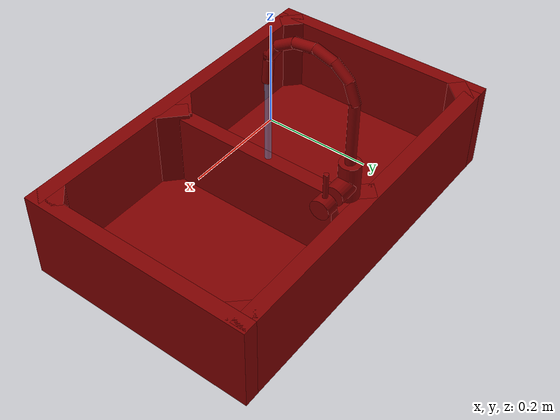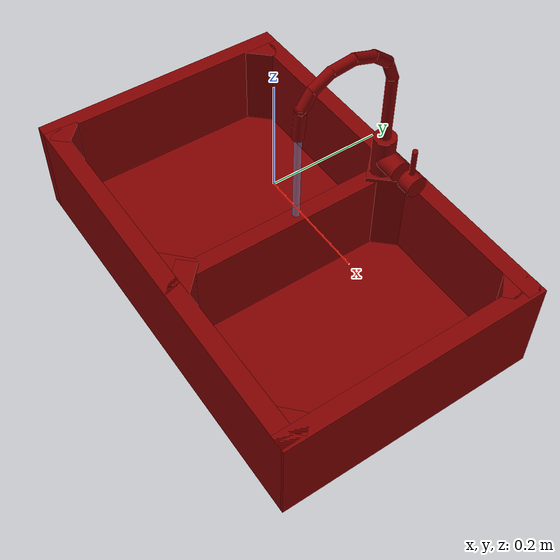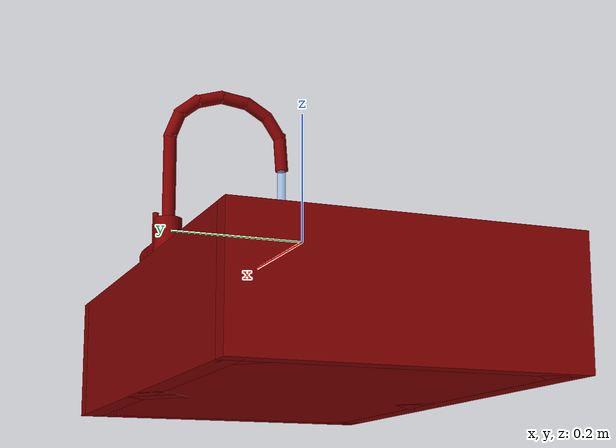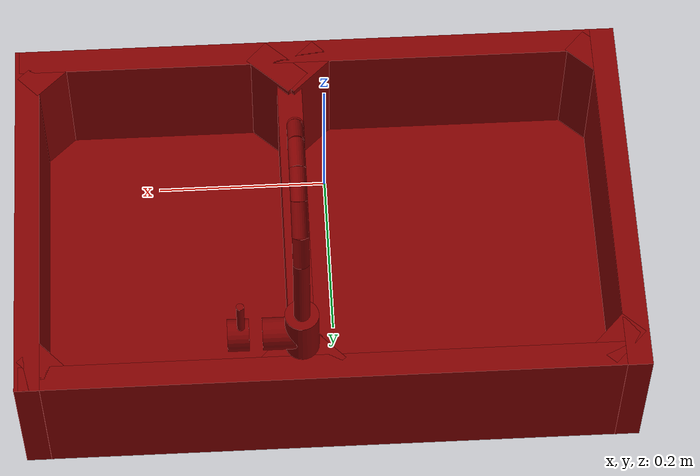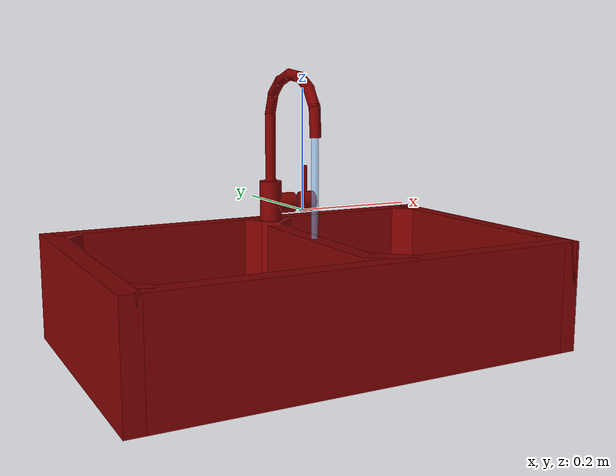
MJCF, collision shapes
<?xml version='1.0' encoding='UTF-8'?>
<mujoco model="model">
  <option timestep="0.002" gravity="0.0 0.0 -9.81"/>
  <compiler angle="radian"/>
  <asset>
    <mesh file="visuals/handle.obj" name="handle_vis"/>
    <mesh file="visuals/Body001.obj" name="Body001_vis"/>
    <mesh file="visuals/spout.obj" name="spout_vis"/>
    <texture file="visuals/T_BC001.png" name="Body001_material" type="2d"/>
    <material name="Body001_material" rgba="1 1 1 1.0" texture="Body001_material" shininess="0.1" specular="5"/>
    <texture file="visuals/T_BC001.png" name="handle_material" type="2d"/>
    <material name="handle_material" rgba="1 1 1 1.0" texture="handle_material" shininess="0.1" specular="5"/>
    <texture file="visuals/T_BC001.png" name="spout_material" type="2d"/>
    <material name="spout_material" rgba="1 1 1 1.0" texture="spout_material" shininess="0.1" specular="5"/>
  </asset>
  <default>
    <default class="visual">
      <geom conaffinity="0" contype="0" group="1" type="mesh"/>
    </default>
    <default class="collision">
      <geom group="0" rgba="0.5 0 0 0.5" solimp="0.998 0.998 0.001" solref="0.001 2"/>
    </default>
    <default class="spawn">
      <geom group="0" rgba="1 1 1 0.5" contype="0" conaffinity="0"/>
      <site group="0" rgba="1 1 1 0.5"/>
    </default>
    <default class="region">
      <geom group="1" conaffinity="0" contype="0" rgba="0 1 0 0"/>
    </default>
  </default>
  <worldbody>
    <body>
      <body name="object">
        <geom mesh="Body001_vis" type="mesh" solimp="0.998 0.998 0.001" solref="0.001 1" friction="0.95 0.3 0.1" class="visual" material="Body001_material"/>
        <geom type="box" pos="0.03568168 -0.00033898 -0.13640268" size="0.015563767403364182 0.227515310049057 0.08199891448020935" quat="1.0 0.0 0.0 0.0" class="collision"/>
        <geom type="box" pos="0.36693436 0.00000013 -0.13923340" size="0.01528544258326292 0.24295544624328613 0.09282014518976212" quat="1.0 0.0 0.0 0.0" class="collision"/>
        <geom type="box" pos="-0.36688540 0.00000013 -0.13923340" size="0.015334184281527996 0.24295544624328613 0.09282014518976212" quat="1.0 0.0 0.0 0.0" class="collision"/>
        <geom type="box" pos="0.00814485 -0.22680522 -0.13923340" size="0.3691226840019226 0.01615010015666485 0.09282014518976212" quat="1.0 0.0 0.0 0.0" class="collision"/>
        <geom type="box" pos="0.00814485 0.22683115 -0.13923340" size="0.3691226840019226 0.01593775860965252 0.09282014518976212" quat="1.0 0.0 0.0 0.0" class="collision"/>
        <geom type="box" pos="-0.00050204 -0.00033898 -0.22008143" size="0.3762187957763672 0.227515310049057 0.011674664914608002" quat="1.0 0.0 0.0 0.0" class="collision"/>
        <geom type="cylinder" pos="0.03617212 0.19606145 -0.01595760" size="0.020531006157398224 0.043195951730012894" quat="1.0 0.0 0.0 0.0" class="collision"/>
        <geom type="cylinder" pos="0.05978877 0.19606145 -0.01595760" size="0.019330136477947235 0.023642554879188538" quat="0.7071068286895752 -0.0 0.7071067690849304 0.0" class="collision"/>
        <geom type="box" pos="0.34889546 0.20877515 -0.13923340" size="0.018279265612363815 0.024715591222047806 0.09282014518976212" quat="0.9288605451583862 0.0 0.0 0.3704295754432678" class="collision"/>
        <geom type="box" pos="0.34655371 -0.20816794 -0.13923340" size="0.018279265612363815 0.027491698041558266 0.09282014518976212" quat="0.9187368750572205 0.0 -0.0 -0.3948703110218048" class="collision"/>
        <geom type="box" pos="0.05018213 -0.20454733 -0.13923340" size="0.018279265612363815 0.035641081631183624 0.09282014518976212" quat="0.9187368750572205 0.0 0.0 0.3948703110218048" class="collision"/>
        <geom type="box" pos="0.05123286 0.20081723 -0.13967647" size="0.018279265612363815 0.03848198428750038 0.09282014518976212" quat="0.9288605451583862 0.0 -0.0 -0.3704295754432678" class="collision"/>
        <geom type="box" pos="-0.34538630 0.20630622 -0.13923340" size="0.018279265612363815 0.028469815850257874 0.09282014518976212" quat="0.9288605451583862 0.0 -0.0 -0.3704295754432678" class="collision"/>
        <geom type="box" pos="-0.34853605 -0.20889786 -0.13923340" size="0.018279265612363815 0.025328487157821655 0.09282014518976212" quat="0.9187368750572205 0.0 0.0 0.3948703110218048" class="collision"/>
        <geom type="box" pos="0.01690199 -0.20400129 -0.13923340" size="0.018279265612363815 0.035124652087688446 0.09282008558511734" quat="0.9187368750572205 0.0 -0.0 -0.3948703110218048" class="collision"/>
        <geom type="box" pos="0.01808428 0.20708442 -0.13923340" size="0.018279265612363815 0.02950967103242874 0.09282014518976212" quat="0.9288605451583862 0.0 0.0 0.3704295754432678" class="collision"/>
        <body name="handle">
          <joint axis="1.0 0.0 0.0" pos="0.10422280 0.19604491 -0.01582434" limited="true" name="handle_temp_joint" type="hinge" range="-0.7853981633974483 0.7853981633974483" damping="0.5" frictionloss="1" armature="2"/>
          <joint axis="0.0 1.0 0.0" pos="0.10422280 0.19604491 -0.01582434" limited="true" name="handle_joint" type="hinge" range="0 0.5" damping="0.5" frictionloss="1" armature="2"/>
          <geom mesh="handle_vis" type="mesh" solimp="0.998 0.998 0.001" solref="0.001 1" friction="0.95 0.3 0.1" class="visual" material="handle_material"/>
          <geom type="cylinder" pos="0.11228790 0.19606145 -0.01595760" size="0.019330138340592384 0.012952927500009537" quat="0.7071068286895752 -0.0 0.7071067690849304 0.0" class="collision"/>
          <geom name="handle_main" type="cylinder" pos="0.10866187 0.19606145 0.02707352" size="0.004705752711743116 0.025899672880768776" quat="1.0 0.0 0.0 0.0" class="collision"/>
        </body>
        <body name="spout">
          <joint axis="0.0 0.0 1.0" pos="0.03626749 0.19569555 0.11866485" limited="true" name="spout_joint" range="-1.0471975511965976 1.0471975511965976" type="hinge" damping="10"/>
          <site type="cylinder" rgba="0.5 0.75 1 0.5" size="0.0063364868983626366 0.16602979600429535" pos="0.03443996 0.02061348 -0.04503134" name="water"/>
          <geom mesh="spout_vis" type="mesh" solimp="0.998 0.998 0.001" solref="0.001 1" friction="0.95 0.3 0.1" class="visual" material="spout_material"/>
          <geom type="cylinder" pos="0.03617212 0.19561376 0.09106597" size="0.00973040983080864 0.06362255662679672" quat="1.0 0.0 0.0 0.0" class="collision" name="spout_main"/>
          <geom type="cylinder" pos="0.03617212 0.18964827 0.16977249" size="0.00973040983080864 0.021186772733926773" quat="0.9831604957580566 0.18274420499801636 0.0 0.0" class="collision"/>
          <geom type="cylinder" pos="0.03617212 0.16832306 0.20132129" size="0.00973040983080864 0.021186772733926773" quat="0.9046697020530701 0.426113486289978 0.0 0.0" class="collision"/>
          <geom type="cylinder" pos="0.03617212 0.13507462 0.21813807" size="0.00973040983080864 0.021186772733926773" quat="0.8061753511428833 0.5916767120361328 0.0 0.0" class="collision"/>
          <geom type="cylinder" pos="0.03617212 0.09660570 0.22102645" size="0.00973040983080864 0.021186772733926773" quat="0.6601064205169678 0.7511721253395081 0.0 0.0" class="collision"/>
          <geom type="cylinder" pos="0.03581233 0.05993400 0.20891665" size="0.00973040983080864 0.021186772733926773" quat="0.4968041479587555 0.8678627014160156 0.0 0.0" class="collision"/>
          <geom type="cylinder" pos="0.03527266 0.03361766 0.18337055" size="0.00973040983080864 0.021186772733926773" quat="0.2905207574367523 0.9568687081336975 0.0 0.0" class="collision"/>
          <geom type="cylinder" pos="0.03527266 0.02176164 0.14594592" size="0.00973040983080864 0.028721407055854797" quat="0.03713774308562279 0.9993101358413696 0.0 0.0" class="collision"/>
        </body>
        <geom class="region" name="reg_basin_left" type="box" pos="-0.167326775 -0.0019000849999999958 -0.131895325" size="0.166017495 0.187833775 0.075080015"/>
        <geom class="region" name="reg_basin_right" type="box" pos="0.20149085 -0.001900075000000001 -0.13185774" size="0.13150341 0.187833785 0.07511757999999999"/>
        <geom class="region" name="reg_main" type="box" pos="1.0000000000287557e-07 1.2500000000359446e-07 -0.13860583" size="0.38321967 0.243955445 0.09354889000000001"/>
      </body>
    </body>
  </worldbody>
  <actuator>
    <motor name="handle_joint_actuator" joint="handle_joint" gear="10"/>
    <motor name="handle_temp_joint_actuator" joint="handle_temp_joint" gear="10"/>
    <motor name="spout_joint_actuator" joint="spout_joint" gear="10"/>
  </actuator>
</mujoco>
